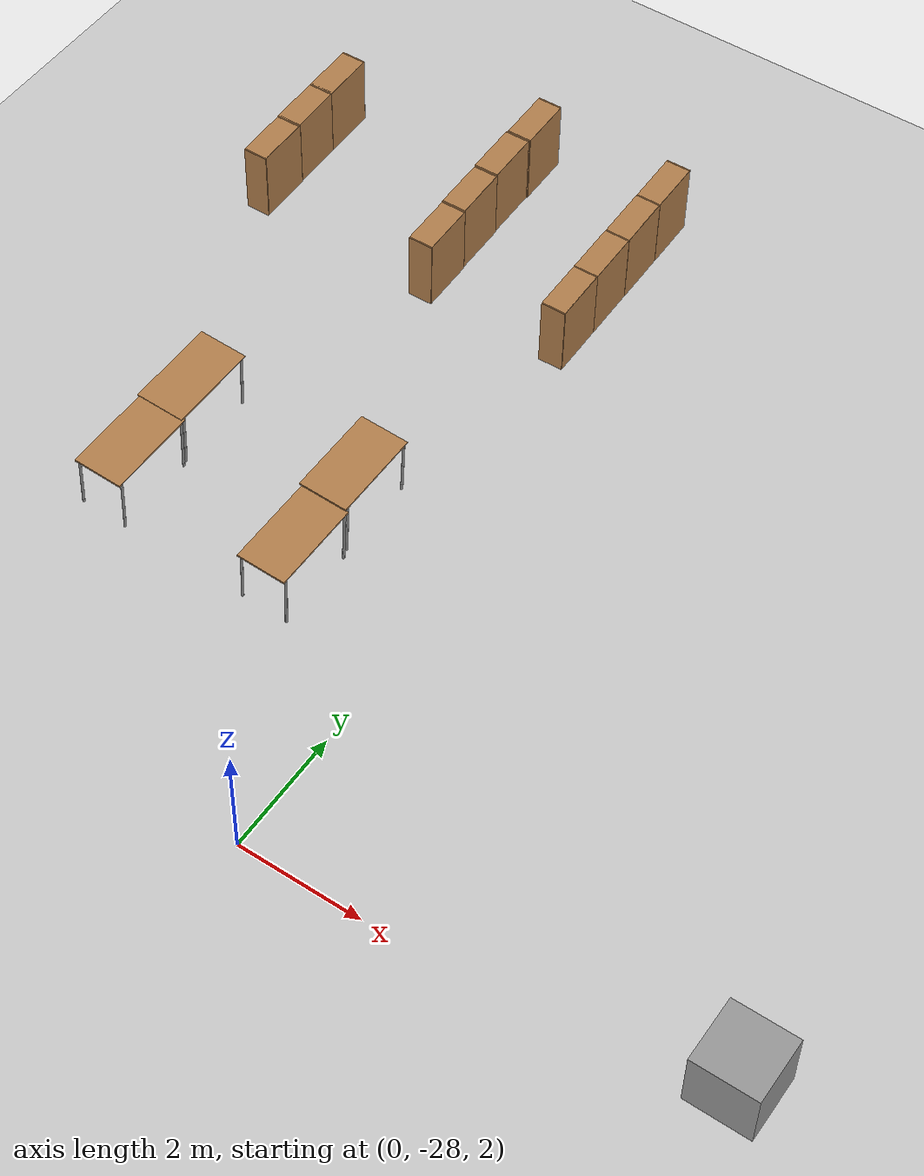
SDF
<sdf version="1.6">
 <world name="default">
  <model name="ground_plane">
   <static>1</static>
   <link name="link">
    <collision name="collision">
     <geometry><plane><normal>0 0 1</normal><size>100 100</size></plane></geometry>
     <surface><friction><ode><mu>100</mu><mu2>50</mu2></ode></friction></surface>
    </collision>
    <visual name="visual">
     <cast_shadows>0</cast_shadows>
     <geometry><plane><normal>0 0 1</normal><size>100 100</size></plane></geometry>
     <material>
      <script><uri>file://media/materials/scripts/gazebo.material</uri><name>Gazebo/Grey</name></script>
     </material>
    </visual>
   </link>
  </model>
  <model name="bookshelf_clone_clone_clone_14">
   <static>1</static>
   <link name="link">
    <inertial><mass>1</mass></inertial>
    <collision name="back">
     <pose>0 0.005 0.6 0 -0 0</pose>
     <geometry><box><size>0.9 0.01 1.2</size></box></geometry>
    </collision>
    <visual name="visual1">
     <pose>0 0.005 0.6 0 -0 0</pose>
     <geometry><box><size>0.9 0.01 1.2</size></box></geometry>
     <material>
      <script><uri>file://media/materials/scripts/gazebo.material</uri><name>Gazebo/Wood</name></script>
     </material>
    </visual>
    <collision name="left_side">
     <pose>0.45 -0.195 0.6 0 -0 0</pose>
     <geometry><box><size>0.02 0.4 1.2</size></box></geometry>
    </collision>
    <visual name="visual2">
     <pose>0.45 -0.195 0.6 0 -0 0</pose>
     <geometry><box><size>0.02 0.4 1.2</size></box></geometry>
     <material>
      <script><uri>file://media/materials/scripts/gazebo.material</uri><name>Gazebo/Wood</name></script>
     </material>
    </visual>
    <collision name="right_side">
     <pose>-0.45 -0.195 0.6 0 -0 0</pose>
     <geometry><box><size>0.02 0.4 1.2</size></box></geometry>
    </collision>
    <visual name="visual3">
     <pose>-0.45 -0.195 0.6 0 -0 0</pose>
     <geometry><box><size>0.02 0.4 1.2</size></box></geometry>
     <material>
      <script><uri>file://media/materials/scripts/gazebo.material</uri><name>Gazebo/Wood</name></script>
     </material>
    </visual>
    <collision name="bottom">
     <pose>0 -0.195 0.03 0 -0 0</pose>
     <geometry><box><size>0.88 0.4 0.06</size></box></geometry>
    </collision>
    <visual name="visual4">
     <pose>0 -0.195 0.03 0 -0 0</pose>
     <geometry><box><size>0.88 0.4 0.06</size></box></geometry>
     <material>
      <script><uri>file://media/materials/scripts/gazebo.material</uri><name>Gazebo/Wood</name></script>
     </material>
    </visual>
    <collision name="top">
     <pose>0 -0.195 1.19 0 -0 0</pose>
     <geometry><box><size>0.88 0.4 0.02</size></box></geometry>
    </collision>
    <visual name="visual5">
     <pose>0 -0.195 1.19 0 -0 0</pose>
     <geometry><box><size>0.88 0.4 0.02</size></box></geometry>
     <material>
      <script><uri>file://media/materials/scripts/gazebo.material</uri><name>Gazebo/Wood</name></script>
     </material>
    </visual>
    <collision name="low_shelf">
     <pose>0 -0.195 0.43 0 -0 0</pose>
     <geometry><box><size>0.88 0.4 0.02</size></box></geometry>
    </collision>
    <visual name="visual6">
     <pose>0 -0.195 0.43 0 -0 0</pose>
     <geometry><box><size>0.88 0.4 0.02</size></box></geometry>
     <material>
      <script><uri>file://media/materials/scripts/gazebo.material</uri><name>Gazebo/Wood</name></script>
     </material>
    </visual>
    <collision name="high_shelf">
     <pose>0 -0.195 0.8 0 -0 0</pose>
     <geometry><box><size>0.88 0.4 0.02</size></box></geometry>
    </collision>
    <visual name="visual7">
     <pose>0 -0.195 0.8 0 -0 0</pose>
     <geometry><box><size>0.88 0.4 0.02</size></box></geometry>
     <material>
      <script><uri>file://media/materials/scripts/gazebo.material</uri><name>Gazebo/Wood</name></script>
     </material>
    </visual>
    <enable_wind>1</enable_wind>
   </link>
   <pose>-6.32718 -16.6059 2.61718 0 0 -1.55468</pose>
   <enable_wind>1</enable_wind>
  </model>
  <model name="bookshelf_clone_clone_clone_15">
   <static>1</static>
   <link name="link">
    <inertial><mass>1</mass></inertial>
    <collision name="back">
     <pose>0 0.005 0.6 0 -0 0</pose>
     <geometry><box><size>0.9 0.01 1.2</size></box></geometry>
    </collision>
    <visual name="visual1">
     <pose>0 0.005 0.6 0 -0 0</pose>
     <geometry><box><size>0.9 0.01 1.2</size></box></geometry>
     <material>
      <script><uri>file://media/materials/scripts/gazebo.material</uri><name>Gazebo/Wood</name></script>
     </material>
    </visual>
    <collision name="left_side">
     <pose>0.45 -0.195 0.6 0 -0 0</pose>
     <geometry><box><size>0.02 0.4 1.2</size></box></geometry>
    </collision>
    <visual name="visual2">
     <pose>0.45 -0.195 0.6 0 -0 0</pose>
     <geometry><box><size>0.02 0.4 1.2</size></box></geometry>
     <material>
      <script><uri>file://media/materials/scripts/gazebo.material</uri><name>Gazebo/Wood</name></script>
     </material>
    </visual>
    <collision name="right_side">
     <pose>-0.45 -0.195 0.6 0 -0 0</pose>
     <geometry><box><size>0.02 0.4 1.2</size></box></geometry>
    </collision>
    <visual name="visual3">
     <pose>-0.45 -0.195 0.6 0 -0 0</pose>
     <geometry><box><size>0.02 0.4 1.2</size></box></geometry>
     <material>
      <script><uri>file://media/materials/scripts/gazebo.material</uri><name>Gazebo/Wood</name></script>
     </material>
    </visual>
    <collision name="bottom">
     <pose>0 -0.195 0.03 0 -0 0</pose>
     <geometry><box><size>0.88 0.4 0.06</size></box></geometry>
    </collision>
    <visual name="visual4">
     <pose>0 -0.195 0.03 0 -0 0</pose>
     <geometry><box><size>0.88 0.4 0.06</size></box></geometry>
     <material>
      <script><uri>file://media/materials/scripts/gazebo.material</uri><name>Gazebo/Wood</name></script>
     </material>
    </visual>
    <collision name="top">
     <pose>0 -0.195 1.19 0 -0 0</pose>
     <geometry><box><size>0.88 0.4 0.02</size></box></geometry>
    </collision>
    <visual name="visual5">
     <pose>0 -0.195 1.19 0 -0 0</pose>
     <geometry><box><size>0.88 0.4 0.02</size></box></geometry>
     <material>
      <script><uri>file://media/materials/scripts/gazebo.material</uri><name>Gazebo/Wood</name></script>
     </material>
    </visual>
    <collision name="low_shelf">
     <pose>0 -0.195 0.43 0 -0 0</pose>
     <geometry><box><size>0.88 0.4 0.02</size></box></geometry>
    </collision>
    <visual name="visual6">
     <pose>0 -0.195 0.43 0 -0 0</pose>
     <geometry><box><size>0.88 0.4 0.02</size></box></geometry>
     <material>
      <script><uri>file://media/materials/scripts/gazebo.material</uri><name>Gazebo/Wood</name></script>
     </material>
    </visual>
    <collision name="high_shelf">
     <pose>0 -0.195 0.8 0 -0 0</pose>
     <geometry><box><size>0.88 0.4 0.02</size></box></geometry>
    </collision>
    <visual name="visual7">
     <pose>0 -0.195 0.8 0 -0 0</pose>
     <geometry><box><size>0.88 0.4 0.02</size></box></geometry>
     <material>
      <script><uri>file://media/materials/scripts/gazebo.material</uri><name>Gazebo/Wood</name></script>
     </material>
    </visual>
    <enable_wind>1</enable_wind>
   </link>
   <pose>-6.31563 -17.4831 2.61718 0 0 -1.55468</pose>
   <enable_wind>1</enable_wind>
  </model>
  <model name="bookshelf_clone_clone_clone_16">
   <static>1</static>
   <link name="link">
    <inertial><mass>1</mass></inertial>
    <collision name="back">
     <pose>0 0.005 0.6 0 -0 0</pose>
     <geometry><box><size>0.9 0.01 1.2</size></box></geometry>
    </collision>
    <visual name="visual1">
     <pose>0 0.005 0.6 0 -0 0</pose>
     <geometry><box><size>0.9 0.01 1.2</size></box></geometry>
     <material>
      <script><uri>file://media/materials/scripts/gazebo.material</uri><name>Gazebo/Wood</name></script>
     </material>
    </visual>
    <collision name="left_side">
     <pose>0.45 -0.195 0.6 0 -0 0</pose>
     <geometry><box><size>0.02 0.4 1.2</size></box></geometry>
    </collision>
    <visual name="visual2">
     <pose>0.45 -0.195 0.6 0 -0 0</pose>
     <geometry><box><size>0.02 0.4 1.2</size></box></geometry>
     <material>
      <script><uri>file://media/materials/scripts/gazebo.material</uri><name>Gazebo/Wood</name></script>
     </material>
    </visual>
    <collision name="right_side">
     <pose>-0.45 -0.195 0.6 0 -0 0</pose>
     <geometry><box><size>0.02 0.4 1.2</size></box></geometry>
    </collision>
    <visual name="visual3">
     <pose>-0.45 -0.195 0.6 0 -0 0</pose>
     <geometry><box><size>0.02 0.4 1.2</size></box></geometry>
     <material>
      <script><uri>file://media/materials/scripts/gazebo.material</uri><name>Gazebo/Wood</name></script>
     </material>
    </visual>
    <collision name="bottom">
     <pose>0 -0.195 0.03 0 -0 0</pose>
     <geometry><box><size>0.88 0.4 0.06</size></box></geometry>
    </collision>
    <visual name="visual4">
     <pose>0 -0.195 0.03 0 -0 0</pose>
     <geometry><box><size>0.88 0.4 0.06</size></box></geometry>
     <material>
      <script><uri>file://media/materials/scripts/gazebo.material</uri><name>Gazebo/Wood</name></script>
     </material>
    </visual>
    <collision name="top">
     <pose>0 -0.195 1.19 0 -0 0</pose>
     <geometry><box><size>0.88 0.4 0.02</size></box></geometry>
    </collision>
    <visual name="visual5">
     <pose>0 -0.195 1.19 0 -0 0</pose>
     <geometry><box><size>0.88 0.4 0.02</size></box></geometry>
     <material>
      <script><uri>file://media/materials/scripts/gazebo.material</uri><name>Gazebo/Wood</name></script>
     </material>
    </visual>
    <collision name="low_shelf">
     <pose>0 -0.195 0.43 0 -0 0</pose>
     <geometry><box><size>0.88 0.4 0.02</size></box></geometry>
    </collision>
    <visual name="visual6">
     <pose>0 -0.195 0.43 0 -0 0</pose>
     <geometry><box><size>0.88 0.4 0.02</size></box></geometry>
     <material>
      <script><uri>file://media/materials/scripts/gazebo.material</uri><name>Gazebo/Wood</name></script>
     </material>
    </visual>
    <collision name="high_shelf">
     <pose>0 -0.195 0.8 0 -0 0</pose>
     <geometry><box><size>0.88 0.4 0.02</size></box></geometry>
    </collision>
    <visual name="visual7">
     <pose>0 -0.195 0.8 0 -0 0</pose>
     <geometry><box><size>0.88 0.4 0.02</size></box></geometry>
     <material>
      <script><uri>file://media/materials/scripts/gazebo.material</uri><name>Gazebo/Wood</name></script>
     </material>
    </visual>
    <enable_wind>1</enable_wind>
   </link>
   <pose>-6.29338 -18.363 2.61718 0 0 -1.55468</pose>
   <enable_wind>1</enable_wind>
  </model>
  <model name="bookshelf_clone_clone_clone_20">
   <static>1</static>
   <link name="link">
    <inertial><mass>1</mass></inertial>
    <collision name="back">
     <pose>0 0.005 0.6 0 -0 0</pose>
     <geometry><box><size>0.9 0.01 1.2</size></box></geometry>
    </collision>
    <visual name="visual1">
     <pose>0 0.005 0.6 0 -0 0</pose>
     <geometry><box><size>0.9 0.01 1.2</size></box></geometry>
     <material>
      <script><uri>file://media/materials/scripts/gazebo.material</uri><name>Gazebo/Wood</name></script>
     </material>
    </visual>
    <collision name="left_side">
     <pose>0.45 -0.195 0.6 0 -0 0</pose>
     <geometry><box><size>0.02 0.4 1.2</size></box></geometry>
    </collision>
    <visual name="visual2">
     <pose>0.45 -0.195 0.6 0 -0 0</pose>
     <geometry><box><size>0.02 0.4 1.2</size></box></geometry>
     <material>
      <script><uri>file://media/materials/scripts/gazebo.material</uri><name>Gazebo/Wood</name></script>
     </material>
    </visual>
    <collision name="right_side">
     <pose>-0.45 -0.195 0.6 0 -0 0</pose>
     <geometry><box><size>0.02 0.4 1.2</size></box></geometry>
    </collision>
    <visual name="visual3">
     <pose>-0.45 -0.195 0.6 0 -0 0</pose>
     <geometry><box><size>0.02 0.4 1.2</size></box></geometry>
     <material>
      <script><uri>file://media/materials/scripts/gazebo.material</uri><name>Gazebo/Wood</name></script>
     </material>
    </visual>
    <collision name="bottom">
     <pose>0 -0.195 0.03 0 -0 0</pose>
     <geometry><box><size>0.88 0.4 0.06</size></box></geometry>
    </collision>
    <visual name="visual4">
     <pose>0 -0.195 0.03 0 -0 0</pose>
     <geometry><box><size>0.88 0.4 0.06</size></box></geometry>
     <material>
      <script><uri>file://media/materials/scripts/gazebo.material</uri><name>Gazebo/Wood</name></script>
     </material>
    </visual>
    <collision name="top">
     <pose>0 -0.195 1.19 0 -0 0</pose>
     <geometry><box><size>0.88 0.4 0.02</size></box></geometry>
    </collision>
    <visual name="visual5">
     <pose>0 -0.195 1.19 0 -0 0</pose>
     <geometry><box><size>0.88 0.4 0.02</size></box></geometry>
     <material>
      <script><uri>file://media/materials/scripts/gazebo.material</uri><name>Gazebo/Wood</name></script>
     </material>
    </visual>
    <collision name="low_shelf">
     <pose>0 -0.195 0.43 0 -0 0</pose>
     <geometry><box><size>0.88 0.4 0.02</size></box></geometry>
    </collision>
    <visual name="visual6">
     <pose>0 -0.195 0.43 0 -0 0</pose>
     <geometry><box><size>0.88 0.4 0.02</size></box></geometry>
     <material>
      <script><uri>file://media/materials/scripts/gazebo.material</uri><name>Gazebo/Wood</name></script>
     </material>
    </visual>
    <collision name="high_shelf">
     <pose>0 -0.195 0.8 0 -0 0</pose>
     <geometry><box><size>0.88 0.4 0.02</size></box></geometry>
    </collision>
    <visual name="visual7">
     <pose>0 -0.195 0.8 0 -0 0</pose>
     <geometry><box><size>0.88 0.4 0.02</size></box></geometry>
     <material>
      <script><uri>file://media/materials/scripts/gazebo.material</uri><name>Gazebo/Wood</name></script>
     </material>
    </visual>
    <enable_wind>1</enable_wind>
   </link>
   <pose>-3.19142 -15.7233 2.61718 0 0 -1.55468</pose>
   <enable_wind>1</enable_wind>
  </model>
  <model name="bookshelf_clone_clone_clone_21">
   <static>1</static>
   <link name="link">
    <inertial><mass>1</mass></inertial>
    <collision name="back">
     <pose>0 0.005 0.6 0 -0 0</pose>
     <geometry><box><size>0.9 0.01 1.2</size></box></geometry>
    </collision>
    <visual name="visual1">
     <pose>0 0.005 0.6 0 -0 0</pose>
     <geometry><box><size>0.9 0.01 1.2</size></box></geometry>
     <material>
      <script><uri>file://media/materials/scripts/gazebo.material</uri><name>Gazebo/Wood</name></script>
     </material>
    </visual>
    <collision name="left_side">
     <pose>0.45 -0.195 0.6 0 -0 0</pose>
     <geometry><box><size>0.02 0.4 1.2</size></box></geometry>
    </collision>
    <visual name="visual2">
     <pose>0.45 -0.195 0.6 0 -0 0</pose>
     <geometry><box><size>0.02 0.4 1.2</size></box></geometry>
     <material>
      <script><uri>file://media/materials/scripts/gazebo.material</uri><name>Gazebo/Wood</name></script>
     </material>
    </visual>
    <collision name="right_side">
     <pose>-0.45 -0.195 0.6 0 -0 0</pose>
     <geometry><box><size>0.02 0.4 1.2</size></box></geometry>
    </collision>
    <visual name="visual3">
     <pose>-0.45 -0.195 0.6 0 -0 0</pose>
     <geometry><box><size>0.02 0.4 1.2</size></box></geometry>
     <material>
      <script><uri>file://media/materials/scripts/gazebo.material</uri><name>Gazebo/Wood</name></script>
     </material>
    </visual>
    <collision name="bottom">
     <pose>0 -0.195 0.03 0 -0 0</pose>
     <geometry><box><size>0.88 0.4 0.06</size></box></geometry>
    </collision>
    <visual name="visual4">
     <pose>0 -0.195 0.03 0 -0 0</pose>
     <geometry><box><size>0.88 0.4 0.06</size></box></geometry>
     <material>
      <script><uri>file://media/materials/scripts/gazebo.material</uri><name>Gazebo/Wood</name></script>
     </material>
    </visual>
    <collision name="top">
     <pose>0 -0.195 1.19 0 -0 0</pose>
     <geometry><box><size>0.88 0.4 0.02</size></box></geometry>
    </collision>
    <visual name="visual5">
     <pose>0 -0.195 1.19 0 -0 0</pose>
     <geometry><box><size>0.88 0.4 0.02</size></box></geometry>
     <material>
      <script><uri>file://media/materials/scripts/gazebo.material</uri><name>Gazebo/Wood</name></script>
     </material>
    </visual>
    <collision name="low_shelf">
     <pose>0 -0.195 0.43 0 -0 0</pose>
     <geometry><box><size>0.88 0.4 0.02</size></box></geometry>
    </collision>
    <visual name="visual6">
     <pose>0 -0.195 0.43 0 -0 0</pose>
     <geometry><box><size>0.88 0.4 0.02</size></box></geometry>
     <material>
      <script><uri>file://media/materials/scripts/gazebo.material</uri><name>Gazebo/Wood</name></script>
     </material>
    </visual>
    <collision name="high_shelf">
     <pose>0 -0.195 0.8 0 -0 0</pose>
     <geometry><box><size>0.88 0.4 0.02</size></box></geometry>
    </collision>
    <visual name="visual7">
     <pose>0 -0.195 0.8 0 -0 0</pose>
     <geometry><box><size>0.88 0.4 0.02</size></box></geometry>
     <material>
      <script><uri>file://media/materials/scripts/gazebo.material</uri><name>Gazebo/Wood</name></script>
     </material>
    </visual>
    <enable_wind>1</enable_wind>
   </link>
   <pose>-3.19258 -16.6447 2.61718 0 0 -1.55468</pose>
   <enable_wind>1</enable_wind>
  </model>
  <model name="bookshelf_clone_clone_clone_22">
   <static>1</static>
   <link name="link">
    <inertial><mass>1</mass></inertial>
    <collision name="back">
     <pose>0 0.005 0.6 0 -0 0</pose>
     <geometry><box><size>0.9 0.01 1.2</size></box></geometry>
    </collision>
    <visual name="visual1">
     <pose>0 0.005 0.6 0 -0 0</pose>
     <geometry><box><size>0.9 0.01 1.2</size></box></geometry>
     <material>
      <script><uri>file://media/materials/scripts/gazebo.material</uri><name>Gazebo/Wood</name></script>
     </material>
    </visual>
    <collision name="left_side">
     <pose>0.45 -0.195 0.6 0 -0 0</pose>
     <geometry><box><size>0.02 0.4 1.2</size></box></geometry>
    </collision>
    <visual name="visual2">
     <pose>0.45 -0.195 0.6 0 -0 0</pose>
     <geometry><box><size>0.02 0.4 1.2</size></box></geometry>
     <material>
      <script><uri>file://media/materials/scripts/gazebo.material</uri><name>Gazebo/Wood</name></script>
     </material>
    </visual>
    <collision name="right_side">
     <pose>-0.45 -0.195 0.6 0 -0 0</pose>
     <geometry><box><size>0.02 0.4 1.2</size></box></geometry>
    </collision>
    <visual name="visual3">
     <pose>-0.45 -0.195 0.6 0 -0 0</pose>
     <geometry><box><size>0.02 0.4 1.2</size></box></geometry>
     <material>
      <script><uri>file://media/materials/scripts/gazebo.material</uri><name>Gazebo/Wood</name></script>
     </material>
    </visual>
    <collision name="bottom">
     <pose>0 -0.195 0.03 0 -0 0</pose>
     <geometry><box><size>0.88 0.4 0.06</size></box></geometry>
    </collision>
    <visual name="visual4">
     <pose>0 -0.195 0.03 0 -0 0</pose>
     <geometry><box><size>0.88 0.4 0.06</size></box></geometry>
     <material>
      <script><uri>file://media/materials/scripts/gazebo.material</uri><name>Gazebo/Wood</name></script>
     </material>
    </visual>
    <collision name="top">
     <pose>0 -0.195 1.19 0 -0 0</pose>
     <geometry><box><size>0.88 0.4 0.02</size></box></geometry>
    </collision>
    <visual name="visual5">
     <pose>0 -0.195 1.19 0 -0 0</pose>
     <geometry><box><size>0.88 0.4 0.02</size></box></geometry>
     <material>
      <script><uri>file://media/materials/scripts/gazebo.material</uri><name>Gazebo/Wood</name></script>
     </material>
    </visual>
    <collision name="low_shelf">
     <pose>0 -0.195 0.43 0 -0 0</pose>
     <geometry><box><size>0.88 0.4 0.02</size></box></geometry>
    </collision>
    <visual name="visual6">
     <pose>0 -0.195 0.43 0 -0 0</pose>
     <geometry><box><size>0.88 0.4 0.02</size></box></geometry>
     <material>
      <script><uri>file://media/materials/scripts/gazebo.material</uri><name>Gazebo/Wood</name></script>
     </material>
    </visual>
    <collision name="high_shelf">
     <pose>0 -0.195 0.8 0 -0 0</pose>
     <geometry><box><size>0.88 0.4 0.02</size></box></geometry>
    </collision>
    <visual name="visual7">
     <pose>0 -0.195 0.8 0 -0 0</pose>
     <geometry><box><size>0.88 0.4 0.02</size></box></geometry>
     <material>
      <script><uri>file://media/materials/scripts/gazebo.material</uri><name>Gazebo/Wood</name></script>
     </material>
    </visual>
    <enable_wind>1</enable_wind>
   </link>
   <pose>-3.1638 -17.5643 2.61718 0 0 -1.55468</pose>
   <enable_wind>1</enable_wind>
  </model>
  <model name="bookshelf_clone_clone_clone_23">
   <static>1</static>
   <link name="link">
    <inertial><mass>1</mass></inertial>
    <collision name="back">
     <pose>0 0.005 0.6 0 -0 0</pose>
     <geometry><box><size>0.9 0.01 1.2</size></box></geometry>
    </collision>
    <visual name="visual1">
     <pose>0 0.005 0.6 0 -0 0</pose>
     <geometry><box><size>0.9 0.01 1.2</size></box></geometry>
     <material>
      <script><uri>file://media/materials/scripts/gazebo.material</uri><name>Gazebo/Wood</name></script>
     </material>
    </visual>
    <collision name="left_side">
     <pose>0.45 -0.195 0.6 0 -0 0</pose>
     <geometry><box><size>0.02 0.4 1.2</size></box></geometry>
    </collision>
    <visual name="visual2">
     <pose>0.45 -0.195 0.6 0 -0 0</pose>
     <geometry><box><size>0.02 0.4 1.2</size></box></geometry>
     <material>
      <script><uri>file://media/materials/scripts/gazebo.material</uri><name>Gazebo/Wood</name></script>
     </material>
    </visual>
    <collision name="right_side">
     <pose>-0.45 -0.195 0.6 0 -0 0</pose>
     <geometry><box><size>0.02 0.4 1.2</size></box></geometry>
    </collision>
    <visual name="visual3">
     <pose>-0.45 -0.195 0.6 0 -0 0</pose>
     <geometry><box><size>0.02 0.4 1.2</size></box></geometry>
     <material>
      <script><uri>file://media/materials/scripts/gazebo.material</uri><name>Gazebo/Wood</name></script>
     </material>
    </visual>
    <collision name="bottom">
     <pose>0 -0.195 0.03 0 -0 0</pose>
     <geometry><box><size>0.88 0.4 0.06</size></box></geometry>
    </collision>
    <visual name="visual4">
     <pose>0 -0.195 0.03 0 -0 0</pose>
     <geometry><box><size>0.88 0.4 0.06</size></box></geometry>
     <material>
      <script><uri>file://media/materials/scripts/gazebo.material</uri><name>Gazebo/Wood</name></script>
     </material>
    </visual>
    <collision name="top">
     <pose>0 -0.195 1.19 0 -0 0</pose>
     <geometry><box><size>0.88 0.4 0.02</size></box></geometry>
    </collision>
    <visual name="visual5">
     <pose>0 -0.195 1.19 0 -0 0</pose>
     <geometry><box><size>0.88 0.4 0.02</size></box></geometry>
     <material>
      <script><uri>file://media/materials/scripts/gazebo.material</uri><name>Gazebo/Wood</name></script>
     </material>
    </visual>
    <collision name="low_shelf">
     <pose>0 -0.195 0.43 0 -0 0</pose>
     <geometry><box><size>0.88 0.4 0.02</size></box></geometry>
    </collision>
    <visual name="visual6">
     <pose>0 -0.195 0.43 0 -0 0</pose>
     <geometry><box><size>0.88 0.4 0.02</size></box></geometry>
     <material>
      <script><uri>file://media/materials/scripts/gazebo.material</uri><name>Gazebo/Wood</name></script>
     </material>
    </visual>
    <collision name="high_shelf">
     <pose>0 -0.195 0.8 0 -0 0</pose>
     <geometry><box><size>0.88 0.4 0.02</size></box></geometry>
    </collision>
    <visual name="visual7">
     <pose>0 -0.195 0.8 0 -0 0</pose>
     <geometry><box><size>0.88 0.4 0.02</size></box></geometry>
     <material>
      <script><uri>file://media/materials/scripts/gazebo.material</uri><name>Gazebo/Wood</name></script>
     </material>
    </visual>
    <enable_wind>1</enable_wind>
   </link>
   <pose>-3.13553 -18.4821 2.61718 0 0 -1.55468</pose>
   <enable_wind>1</enable_wind>
  </model>
  <model name="table_clone_clone">
   <static>1</static>
   <link name="link">
    <collision name="surface">
     <pose>0 0 1 0 -0 0</pose>
     <geometry><box><size>1.5 0.8 0.03</size></box></geometry>
     <surface><friction><ode><mu>0.6</mu><mu2>0.6</mu2></ode></friction></surface>
    </collision>
    <visual name="visual1">
     <pose>0 0 1 0 -0 0</pose>
     <geometry><box><size>1.5 0.8 0.03</size></box></geometry>
     <material>
      <script><uri>file://media/materials/scripts/gazebo.material</uri><name>Gazebo/Wood</name></script>
     </material>
    </visual>
    <collision name="front_left_leg">
     <pose>0.68 0.38 0.5 0 -0 0</pose>
     <geometry><cylinder><radius>0.02</radius><length>1</length></cylinder></geometry>
    </collision>
    <visual name="front_left_leg">
     <pose>0.68 0.38 0.5 0 -0 0</pose>
     <geometry><cylinder><radius>0.02</radius><length>1</length></cylinder></geometry>
     <material>
      <script><uri>file://media/materials/scripts/gazebo.material</uri><name>Gazebo/Grey</name></script>
     </material>
    </visual>
    <collision name="front_right_leg">
     <pose>0.68 -0.38 0.5 0 -0 0</pose>
     <geometry><cylinder><radius>0.02</radius><length>1</length></cylinder></geometry>
    </collision>
    <visual name="front_right_leg">
     <pose>0.68 -0.38 0.5 0 -0 0</pose>
     <geometry><cylinder><radius>0.02</radius><length>1</length></cylinder></geometry>
     <material>
      <script><uri>file://media/materials/scripts/gazebo.material</uri><name>Gazebo/Grey</name></script>
     </material>
    </visual>
    <collision name="back_right_leg">
     <pose>-0.68 -0.38 0.5 0 -0 0</pose>
     <geometry><cylinder><radius>0.02</radius><length>1</length></cylinder></geometry>
    </collision>
    <visual name="back_right_leg">
     <pose>-0.68 -0.38 0.5 0 -0 0</pose>
     <geometry><cylinder><radius>0.02</radius><length>1</length></cylinder></geometry>
     <material>
      <script><uri>file://media/materials/scripts/gazebo.material</uri><name>Gazebo/Grey</name></script>
     </material>
    </visual>
    <collision name="back_left_leg">
     <pose>-0.68 0.38 0.5 0 -0 0</pose>
     <geometry><cylinder><radius>0.02</radius><length>1</length></cylinder></geometry>
    </collision>
    <visual name="back_left_leg">
     <pose>-0.68 0.38 0.5 0 -0 0</pose>
     <geometry><cylinder><radius>0.02</radius><length>1</length></cylinder></geometry>
     <material>
      <script><uri>file://media/materials/scripts/gazebo.material</uri><name>Gazebo/Grey</name></script>
     </material>
    </visual>
   </link>
   <pose>-4.78887 -22.6902 2.38998 0.042372 -0.007072 1.56735</pose>
  </model>
  <model name="table_clone_clone_clone_1">
   <static>1</static>
   <link name="link">
    <collision name="surface">
     <pose>0 0 1 0 -0 0</pose>
     <geometry><box><size>1.5 0.8 0.03</size></box></geometry>
     <surface><friction><ode><mu>0.6</mu><mu2>0.6</mu2></ode></friction></surface>
    </collision>
    <visual name="visual1">
     <pose>0 0 1 0 -0 0</pose>
     <geometry><box><size>1.5 0.8 0.03</size></box></geometry>
     <material>
      <script><uri>file://media/materials/scripts/gazebo.material</uri><name>Gazebo/Wood</name></script>
     </material>
    </visual>
    <collision name="front_left_leg">
     <pose>0.68 0.38 0.5 0 -0 0</pose>
     <geometry><cylinder><radius>0.02</radius><length>1</length></cylinder></geometry>
    </collision>
    <visual name="front_left_leg">
     <pose>0.68 0.38 0.5 0 -0 0</pose>
     <geometry><cylinder><radius>0.02</radius><length>1</length></cylinder></geometry>
     <material>
      <script><uri>file://media/materials/scripts/gazebo.material</uri><name>Gazebo/Grey</name></script>
     </material>
    </visual>
    <collision name="front_right_leg">
     <pose>0.68 -0.38 0.5 0 -0 0</pose>
     <geometry><cylinder><radius>0.02</radius><length>1</length></cylinder></geometry>
    </collision>
    <visual name="front_right_leg">
     <pose>0.68 -0.38 0.5 0 -0 0</pose>
     <geometry><cylinder><radius>0.02</radius><length>1</length></cylinder></geometry>
     <material>
      <script><uri>file://media/materials/scripts/gazebo.material</uri><name>Gazebo/Grey</name></script>
     </material>
    </visual>
    <collision name="back_right_leg">
     <pose>-0.68 -0.38 0.5 0 -0 0</pose>
     <geometry><cylinder><radius>0.02</radius><length>1</length></cylinder></geometry>
    </collision>
    <visual name="back_right_leg">
     <pose>-0.68 -0.38 0.5 0 -0 0</pose>
     <geometry><cylinder><radius>0.02</radius><length>1</length></cylinder></geometry>
     <material>
      <script><uri>file://media/materials/scripts/gazebo.material</uri><name>Gazebo/Grey</name></script>
     </material>
    </visual>
    <collision name="back_left_leg">
     <pose>-0.68 0.38 0.5 0 -0 0</pose>
     <geometry><cylinder><radius>0.02</radius><length>1</length></cylinder></geometry>
    </collision>
    <visual name="back_left_leg">
     <pose>-0.68 0.38 0.5 0 -0 0</pose>
     <geometry><cylinder><radius>0.02</radius><length>1</length></cylinder></geometry>
     <material>
      <script><uri>file://media/materials/scripts/gazebo.material</uri><name>Gazebo/Grey</name></script>
     </material>
    </visual>
   </link>
   <pose>-1.8962 -22.7092 2.40819 0.042372 -0.007072 1.56735</pose>
  </model>
  <model name="table_clone_clone_clone_2_clone_1">
   <static>1</static>
   <link name="link">
    <collision name="surface">
     <pose>0 0 1 0 -0 0</pose>
     <geometry><box><size>1.5 0.8 0.03</size></box></geometry>
     <surface><friction><ode><mu>0.6</mu><mu2>0.6</mu2></ode></friction></surface>
    </collision>
    <visual name="visual1">
     <pose>0 0 1 0 -0 0</pose>
     <geometry><box><size>1.5 0.8 0.03</size></box></geometry>
     <material>
      <script><uri>file://media/materials/scripts/gazebo.material</uri><name>Gazebo/Wood</name></script>
     </material>
    </visual>
    <collision name="front_left_leg">
     <pose>0.68 0.38 0.5 0 -0 0</pose>
     <geometry><cylinder><radius>0.02</radius><length>1</length></cylinder></geometry>
    </collision>
    <visual name="front_left_leg">
     <pose>0.68 0.38 0.5 0 -0 0</pose>
     <geometry><cylinder><radius>0.02</radius><length>1</length></cylinder></geometry>
     <material>
      <script><uri>file://media/materials/scripts/gazebo.material</uri><name>Gazebo/Grey</name></script>
     </material>
    </visual>
    <collision name="front_right_leg">
     <pose>0.68 -0.38 0.5 0 -0 0</pose>
     <geometry><cylinder><radius>0.02</radius><length>1</length></cylinder></geometry>
    </collision>
    <visual name="front_right_leg">
     <pose>0.68 -0.38 0.5 0 -0 0</pose>
     <geometry><cylinder><radius>0.02</radius><length>1</length></cylinder></geometry>
     <material>
      <script><uri>file://media/materials/scripts/gazebo.material</uri><name>Gazebo/Grey</name></script>
     </material>
    </visual>
    <collision name="back_right_leg">
     <pose>-0.68 -0.38 0.5 0 -0 0</pose>
     <geometry><cylinder><radius>0.02</radius><length>1</length></cylinder></geometry>
    </collision>
    <visual name="back_right_leg">
     <pose>-0.68 -0.38 0.5 0 -0 0</pose>
     <geometry><cylinder><radius>0.02</radius><length>1</length></cylinder></geometry>
     <material>
      <script><uri>file://media/materials/scripts/gazebo.material</uri><name>Gazebo/Grey</name></script>
     </material>
    </visual>
    <collision name="back_left_leg">
     <pose>-0.68 0.38 0.5 0 -0 0</pose>
     <geometry><cylinder><radius>0.02</radius><length>1</length></cylinder></geometry>
    </collision>
    <visual name="back_left_leg">
     <pose>-0.68 0.38 0.5 0 -0 0</pose>
     <geometry><cylinder><radius>0.02</radius><length>1</length></cylinder></geometry>
     <material>
      <script><uri>file://media/materials/scripts/gazebo.material</uri><name>Gazebo/Grey</name></script>
     </material>
    </visual>
   </link>
   <pose>-4.76604 -24.1423 2.36864 0.042372 -0.007072 1.56735</pose>
  </model>
  <model name="table_clone_clone_clone_2_clone_2">
   <static>1</static>
   <link name="link">
    <collision name="surface">
     <pose>0 0 1 0 -0 0</pose>
     <geometry><box><size>1.5 0.8 0.03</size></box></geometry>
     <surface><friction><ode><mu>0.6</mu><mu2>0.6</mu2></ode></friction></surface>
    </collision>
    <visual name="visual1">
     <pose>0 0 1 0 -0 0</pose>
     <geometry><box><size>1.5 0.8 0.03</size></box></geometry>
     <material>
      <script><uri>file://media/materials/scripts/gazebo.material</uri><name>Gazebo/Wood</name></script>
     </material>
    </visual>
    <collision name="front_left_leg">
     <pose>0.68 0.38 0.5 0 -0 0</pose>
     <geometry><cylinder><radius>0.02</radius><length>1</length></cylinder></geometry>
    </collision>
    <visual name="front_left_leg">
     <pose>0.68 0.38 0.5 0 -0 0</pose>
     <geometry><cylinder><radius>0.02</radius><length>1</length></cylinder></geometry>
     <material>
      <script><uri>file://media/materials/scripts/gazebo.material</uri><name>Gazebo/Grey</name></script>
     </material>
    </visual>
    <collision name="front_right_leg">
     <pose>0.68 -0.38 0.5 0 -0 0</pose>
     <geometry><cylinder><radius>0.02</radius><length>1</length></cylinder></geometry>
    </collision>
    <visual name="front_right_leg">
     <pose>0.68 -0.38 0.5 0 -0 0</pose>
     <geometry><cylinder><radius>0.02</radius><length>1</length></cylinder></geometry>
     <material>
      <script><uri>file://media/materials/scripts/gazebo.material</uri><name>Gazebo/Grey</name></script>
     </material>
    </visual>
    <collision name="back_right_leg">
     <pose>-0.68 -0.38 0.5 0 -0 0</pose>
     <geometry><cylinder><radius>0.02</radius><length>1</length></cylinder></geometry>
    </collision>
    <visual name="back_right_leg">
     <pose>-0.68 -0.38 0.5 0 -0 0</pose>
     <geometry><cylinder><radius>0.02</radius><length>1</length></cylinder></geometry>
     <material>
      <script><uri>file://media/materials/scripts/gazebo.material</uri><name>Gazebo/Grey</name></script>
     </material>
    </visual>
    <collision name="back_left_leg">
     <pose>-0.68 0.38 0.5 0 -0 0</pose>
     <geometry><cylinder><radius>0.02</radius><length>1</length></cylinder></geometry>
    </collision>
    <visual name="back_left_leg">
     <pose>-0.68 0.38 0.5 0 -0 0</pose>
     <geometry><cylinder><radius>0.02</radius><length>1</length></cylinder></geometry>
     <material>
      <script><uri>file://media/materials/scripts/gazebo.material</uri><name>Gazebo/Grey</name></script>
     </material>
    </visual>
   </link>
   <pose>-1.86234 -24.1991 2.36864 0.042372 -0.007072 1.56735</pose>
  </model>
  <model name="bookshelf_clone_10">
   <static>1</static>
   <link name="link">
    <inertial><mass>1</mass></inertial>
    <collision name="back">
     <pose>0 0.005 0.6 0 -0 0</pose>
     <geometry><box><size>0.9 0.01 1.2</size></box></geometry>
    </collision>
    <visual name="visual1">
     <pose>0 0.005 0.6 0 -0 0</pose>
     <geometry><box><size>0.9 0.01 1.2</size></box></geometry>
     <material>
      <script><uri>file://media/materials/scripts/gazebo.material</uri><name>Gazebo/Wood</name></script>
     </material>
    </visual>
    <collision name="left_side">
     <pose>0.45 -0.195 0.6 0 -0 0</pose>
     <geometry><box><size>0.02 0.4 1.2</size></box></geometry>
    </collision>
    <visual name="visual2">
     <pose>0.45 -0.195 0.6 0 -0 0</pose>
     <geometry><box><size>0.02 0.4 1.2</size></box></geometry>
     <material>
      <script><uri>file://media/materials/scripts/gazebo.material</uri><name>Gazebo/Wood</name></script>
     </material>
    </visual>
    <collision name="right_side">
     <pose>-0.45 -0.195 0.6 0 -0 0</pose>
     <geometry><box><size>0.02 0.4 1.2</size></box></geometry>
    </collision>
    <visual name="visual3">
     <pose>-0.45 -0.195 0.6 0 -0 0</pose>
     <geometry><box><size>0.02 0.4 1.2</size></box></geometry>
     <material>
      <script><uri>file://media/materials/scripts/gazebo.material</uri><name>Gazebo/Wood</name></script>
     </material>
    </visual>
    <collision name="bottom">
     <pose>0 -0.195 0.03 0 -0 0</pose>
     <geometry><box><size>0.88 0.4 0.06</size></box></geometry>
    </collision>
    <visual name="visual4">
     <pose>0 -0.195 0.03 0 -0 0</pose>
     <geometry><box><size>0.88 0.4 0.06</size></box></geometry>
     <material>
      <script><uri>file://media/materials/scripts/gazebo.material</uri><name>Gazebo/Wood</name></script>
     </material>
    </visual>
    <collision name="top">
     <pose>0 -0.195 1.19 0 -0 0</pose>
     <geometry><box><size>0.88 0.4 0.02</size></box></geometry>
    </collision>
    <visual name="visual5">
     <pose>0 -0.195 1.19 0 -0 0</pose>
     <geometry><box><size>0.88 0.4 0.02</size></box></geometry>
     <material>
      <script><uri>file://media/materials/scripts/gazebo.material</uri><name>Gazebo/Wood</name></script>
     </material>
    </visual>
    <collision name="low_shelf">
     <pose>0 -0.195 0.43 0 -0 0</pose>
     <geometry><box><size>0.88 0.4 0.02</size></box></geometry>
    </collision>
    <visual name="visual6">
     <pose>0 -0.195 0.43 0 -0 0</pose>
     <geometry><box><size>0.88 0.4 0.02</size></box></geometry>
     <material>
      <script><uri>file://media/materials/scripts/gazebo.material</uri><name>Gazebo/Wood</name></script>
     </material>
    </visual>
    <collision name="high_shelf">
     <pose>0 -0.195 0.8 0 -0 0</pose>
     <geometry><box><size>0.88 0.4 0.02</size></box></geometry>
    </collision>
    <visual name="visual7">
     <pose>0 -0.195 0.8 0 -0 0</pose>
     <geometry><box><size>0.88 0.4 0.02</size></box></geometry>
     <material>
      <script><uri>file://media/materials/scripts/gazebo.material</uri><name>Gazebo/Wood</name></script>
     </material>
    </visual>
    <enable_wind>1</enable_wind>
   </link>
   <pose>-0.818919 -15.784 2.61718 0 0 -1.55468</pose>
   <enable_wind>1</enable_wind>
  </model>
  <model name="bookshelf_clone_11">
   <static>1</static>
   <link name="link">
    <inertial><mass>1</mass></inertial>
    <collision name="back">
     <pose>0 0.005 0.6 0 -0 0</pose>
     <geometry><box><size>0.9 0.01 1.2</size></box></geometry>
    </collision>
    <visual name="visual1">
     <pose>0 0.005 0.6 0 -0 0</pose>
     <geometry><box><size>0.9 0.01 1.2</size></box></geometry>
     <material>
      <script><uri>file://media/materials/scripts/gazebo.material</uri><name>Gazebo/Wood</name></script>
     </material>
    </visual>
    <collision name="left_side">
     <pose>0.45 -0.195 0.6 0 -0 0</pose>
     <geometry><box><size>0.02 0.4 1.2</size></box></geometry>
    </collision>
    <visual name="visual2">
     <pose>0.45 -0.195 0.6 0 -0 0</pose>
     <geometry><box><size>0.02 0.4 1.2</size></box></geometry>
     <material>
      <script><uri>file://media/materials/scripts/gazebo.material</uri><name>Gazebo/Wood</name></script>
     </material>
    </visual>
    <collision name="right_side">
     <pose>-0.45 -0.195 0.6 0 -0 0</pose>
     <geometry><box><size>0.02 0.4 1.2</size></box></geometry>
    </collision>
    <visual name="visual3">
     <pose>-0.45 -0.195 0.6 0 -0 0</pose>
     <geometry><box><size>0.02 0.4 1.2</size></box></geometry>
     <material>
      <script><uri>file://media/materials/scripts/gazebo.material</uri><name>Gazebo/Wood</name></script>
     </material>
    </visual>
    <collision name="bottom">
     <pose>0 -0.195 0.03 0 -0 0</pose>
     <geometry><box><size>0.88 0.4 0.06</size></box></geometry>
    </collision>
    <visual name="visual4">
     <pose>0 -0.195 0.03 0 -0 0</pose>
     <geometry><box><size>0.88 0.4 0.06</size></box></geometry>
     <material>
      <script><uri>file://media/materials/scripts/gazebo.material</uri><name>Gazebo/Wood</name></script>
     </material>
    </visual>
    <collision name="top">
     <pose>0 -0.195 1.19 0 -0 0</pose>
     <geometry><box><size>0.88 0.4 0.02</size></box></geometry>
    </collision>
    <visual name="visual5">
     <pose>0 -0.195 1.19 0 -0 0</pose>
     <geometry><box><size>0.88 0.4 0.02</size></box></geometry>
     <material>
      <script><uri>file://media/materials/scripts/gazebo.material</uri><name>Gazebo/Wood</name></script>
     </material>
    </visual>
    <collision name="low_shelf">
     <pose>0 -0.195 0.43 0 -0 0</pose>
     <geometry><box><size>0.88 0.4 0.02</size></box></geometry>
    </collision>
    <visual name="visual6">
     <pose>0 -0.195 0.43 0 -0 0</pose>
     <geometry><box><size>0.88 0.4 0.02</size></box></geometry>
     <material>
      <script><uri>file://media/materials/scripts/gazebo.material</uri><name>Gazebo/Wood</name></script>
     </material>
    </visual>
    <collision name="high_shelf">
     <pose>0 -0.195 0.8 0 -0 0</pose>
     <geometry><box><size>0.88 0.4 0.02</size></box></geometry>
    </collision>
    <visual name="visual7">
     <pose>0 -0.195 0.8 0 -0 0</pose>
     <geometry><box><size>0.88 0.4 0.02</size></box></geometry>
     <material>
      <script><uri>file://media/materials/scripts/gazebo.material</uri><name>Gazebo/Wood</name></script>
     </material>
    </visual>
    <enable_wind>1</enable_wind>
   </link>
   <pose>-0.806522 -16.6858 2.61718 0 0 -1.55468</pose>
   <enable_wind>1</enable_wind>
  </model>
  <model name="bookshelf_clone_12">
   <static>1</static>
   <link name="link">
    <inertial><mass>1</mass></inertial>
    <collision name="back">
     <pose>0 0.005 0.6 0 -0 0</pose>
     <geometry><box><size>0.9 0.01 1.2</size></box></geometry>
    </collision>
    <visual name="visual1">
     <pose>0 0.005 0.6 0 -0 0</pose>
     <geometry><box><size>0.9 0.01 1.2</size></box></geometry>
     <material>
      <script><uri>file://media/materials/scripts/gazebo.material</uri><name>Gazebo/Wood</name></script>
     </material>
    </visual>
    <collision name="left_side">
     <pose>0.45 -0.195 0.6 0 -0 0</pose>
     <geometry><box><size>0.02 0.4 1.2</size></box></geometry>
    </collision>
    <visual name="visual2">
     <pose>0.45 -0.195 0.6 0 -0 0</pose>
     <geometry><box><size>0.02 0.4 1.2</size></box></geometry>
     <material>
      <script><uri>file://media/materials/scripts/gazebo.material</uri><name>Gazebo/Wood</name></script>
     </material>
    </visual>
    <collision name="right_side">
     <pose>-0.45 -0.195 0.6 0 -0 0</pose>
     <geometry><box><size>0.02 0.4 1.2</size></box></geometry>
    </collision>
    <visual name="visual3">
     <pose>-0.45 -0.195 0.6 0 -0 0</pose>
     <geometry><box><size>0.02 0.4 1.2</size></box></geometry>
     <material>
      <script><uri>file://media/materials/scripts/gazebo.material</uri><name>Gazebo/Wood</name></script>
     </material>
    </visual>
    <collision name="bottom">
     <pose>0 -0.195 0.03 0 -0 0</pose>
     <geometry><box><size>0.88 0.4 0.06</size></box></geometry>
    </collision>
    <visual name="visual4">
     <pose>0 -0.195 0.03 0 -0 0</pose>
     <geometry><box><size>0.88 0.4 0.06</size></box></geometry>
     <material>
      <script><uri>file://media/materials/scripts/gazebo.material</uri><name>Gazebo/Wood</name></script>
     </material>
    </visual>
    <collision name="top">
     <pose>0 -0.195 1.19 0 -0 0</pose>
     <geometry><box><size>0.88 0.4 0.02</size></box></geometry>
    </collision>
    <visual name="visual5">
     <pose>0 -0.195 1.19 0 -0 0</pose>
     <geometry><box><size>0.88 0.4 0.02</size></box></geometry>
     <material>
      <script><uri>file://media/materials/scripts/gazebo.material</uri><name>Gazebo/Wood</name></script>
     </material>
    </visual>
    <collision name="low_shelf">
     <pose>0 -0.195 0.43 0 -0 0</pose>
     <geometry><box><size>0.88 0.4 0.02</size></box></geometry>
    </collision>
    <visual name="visual6">
     <pose>0 -0.195 0.43 0 -0 0</pose>
     <geometry><box><size>0.88 0.4 0.02</size></box></geometry>
     <material>
      <script><uri>file://media/materials/scripts/gazebo.material</uri><name>Gazebo/Wood</name></script>
     </material>
    </visual>
    <collision name="high_shelf">
     <pose>0 -0.195 0.8 0 -0 0</pose>
     <geometry><box><size>0.88 0.4 0.02</size></box></geometry>
    </collision>
    <visual name="visual7">
     <pose>0 -0.195 0.8 0 -0 0</pose>
     <geometry><box><size>0.88 0.4 0.02</size></box></geometry>
     <material>
      <script><uri>file://media/materials/scripts/gazebo.material</uri><name>Gazebo/Wood</name></script>
     </material>
    </visual>
    <enable_wind>1</enable_wind>
   </link>
   <pose>-0.794666 -17.5868 2.61718 0 0 -1.55468</pose>
   <enable_wind>1</enable_wind>
  </model>
  <model name="bookshelf_clone_13">
   <static>1</static>
   <link name="link">
    <inertial><mass>1</mass></inertial>
    <collision name="back">
     <pose>0 0.005 0.6 0 -0 0</pose>
     <geometry><box><size>0.9 0.01 1.2</size></box></geometry>
    </collision>
    <visual name="visual1">
     <pose>0 0.005 0.6 0 -0 0</pose>
     <geometry><box><size>0.9 0.01 1.2</size></box></geometry>
     <material>
      <script><uri>file://media/materials/scripts/gazebo.material</uri><name>Gazebo/Wood</name></script>
     </material>
    </visual>
    <collision name="left_side">
     <pose>0.45 -0.195 0.6 0 -0 0</pose>
     <geometry><box><size>0.02 0.4 1.2</size></box></geometry>
    </collision>
    <visual name="visual2">
     <pose>0.45 -0.195 0.6 0 -0 0</pose>
     <geometry><box><size>0.02 0.4 1.2</size></box></geometry>
     <material>
      <script><uri>file://media/materials/scripts/gazebo.material</uri><name>Gazebo/Wood</name></script>
     </material>
    </visual>
    <collision name="right_side">
     <pose>-0.45 -0.195 0.6 0 -0 0</pose>
     <geometry><box><size>0.02 0.4 1.2</size></box></geometry>
    </collision>
    <visual name="visual3">
     <pose>-0.45 -0.195 0.6 0 -0 0</pose>
     <geometry><box><size>0.02 0.4 1.2</size></box></geometry>
     <material>
      <script><uri>file://media/materials/scripts/gazebo.material</uri><name>Gazebo/Wood</name></script>
     </material>
    </visual>
    <collision name="bottom">
     <pose>0 -0.195 0.03 0 -0 0</pose>
     <geometry><box><size>0.88 0.4 0.06</size></box></geometry>
    </collision>
    <visual name="visual4">
     <pose>0 -0.195 0.03 0 -0 0</pose>
     <geometry><box><size>0.88 0.4 0.06</size></box></geometry>
     <material>
      <script><uri>file://media/materials/scripts/gazebo.material</uri><name>Gazebo/Wood</name></script>
     </material>
    </visual>
    <collision name="top">
     <pose>0 -0.195 1.19 0 -0 0</pose>
     <geometry><box><size>0.88 0.4 0.02</size></box></geometry>
    </collision>
    <visual name="visual5">
     <pose>0 -0.195 1.19 0 -0 0</pose>
     <geometry><box><size>0.88 0.4 0.02</size></box></geometry>
     <material>
      <script><uri>file://media/materials/scripts/gazebo.material</uri><name>Gazebo/Wood</name></script>
     </material>
    </visual>
    <collision name="low_shelf">
     <pose>0 -0.195 0.43 0 -0 0</pose>
     <geometry><box><size>0.88 0.4 0.02</size></box></geometry>
    </collision>
    <visual name="visual6">
     <pose>0 -0.195 0.43 0 -0 0</pose>
     <geometry><box><size>0.88 0.4 0.02</size></box></geometry>
     <material>
      <script><uri>file://media/materials/scripts/gazebo.material</uri><name>Gazebo/Wood</name></script>
     </material>
    </visual>
    <collision name="high_shelf">
     <pose>0 -0.195 0.8 0 -0 0</pose>
     <geometry><box><size>0.88 0.4 0.02</size></box></geometry>
    </collision>
    <visual name="visual7">
     <pose>0 -0.195 0.8 0 -0 0</pose>
     <geometry><box><size>0.88 0.4 0.02</size></box></geometry>
     <material>
      <script><uri>file://media/materials/scripts/gazebo.material</uri><name>Gazebo/Wood</name></script>
     </material>
    </visual>
    <enable_wind>1</enable_wind>
   </link>
   <pose>-0.781363 -18.4862 2.61718 0 0 -1.55468</pose>
   <enable_wind>1</enable_wind>
  </model>
  <model name="unit_box_4_clone_1">
   <pose>7.32144 -27.5881 3.1 0 -0 2e-06</pose>
   <link name="link">
    <inertial>
     <mass>1</mass>
     <inertia>
      <ixx>0.166667</ixx>
      <ixy>0</ixy>
      <ixz>0</ixz>
      <iyy>0.166667</iyy>
      <iyz>0</iyz>
      <izz>0.166667</izz>
     </inertia>
    </inertial>
    <collision name="collision"><geometry><box><size>1 1 1</size></box></geometry></collision>
    <visual name="visual">
     <geometry><box><size>1 1 1</size></box></geometry>
     <material>
      <script><name>Gazebo/Grey</name><uri>file://media/materials/scripts/gazebo.material</uri></script>
     </material>
    </visual>
   </link>
  </model>
 </world>
</sdf>
